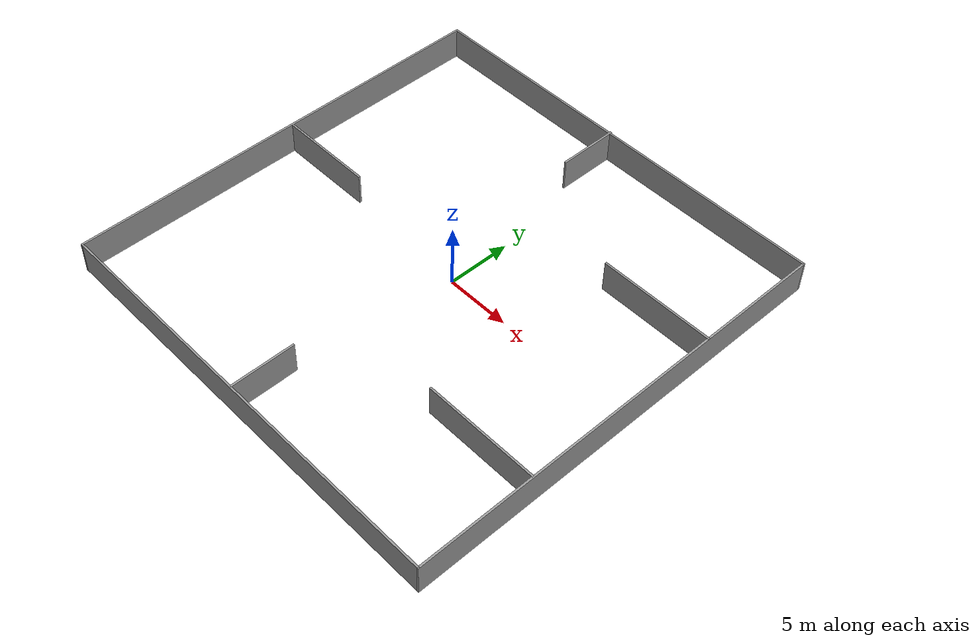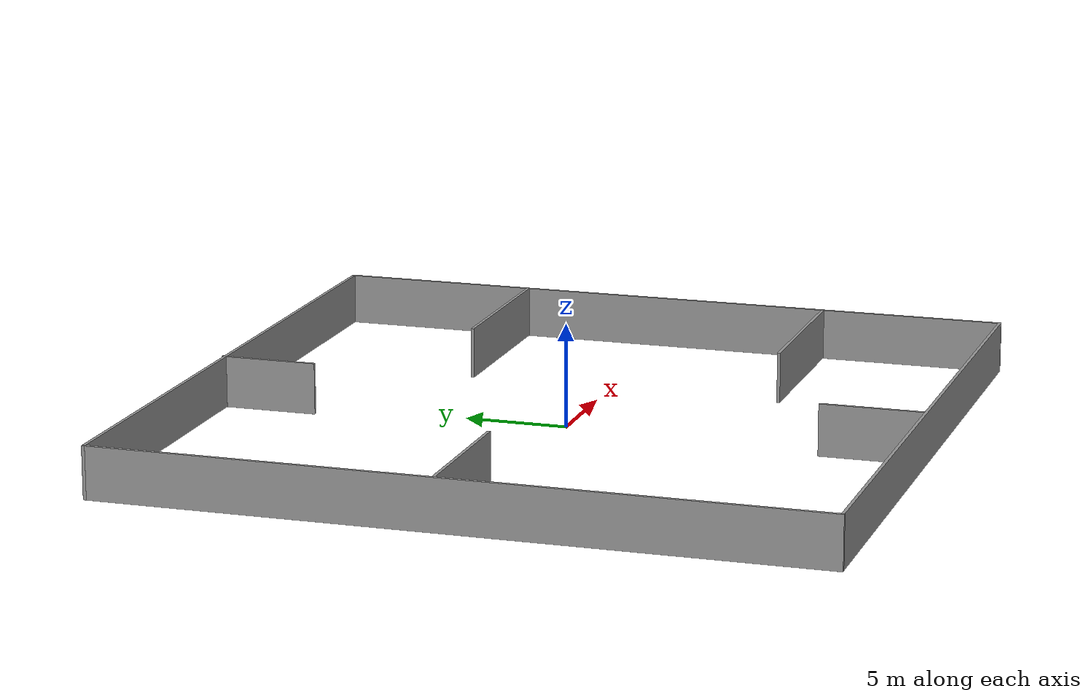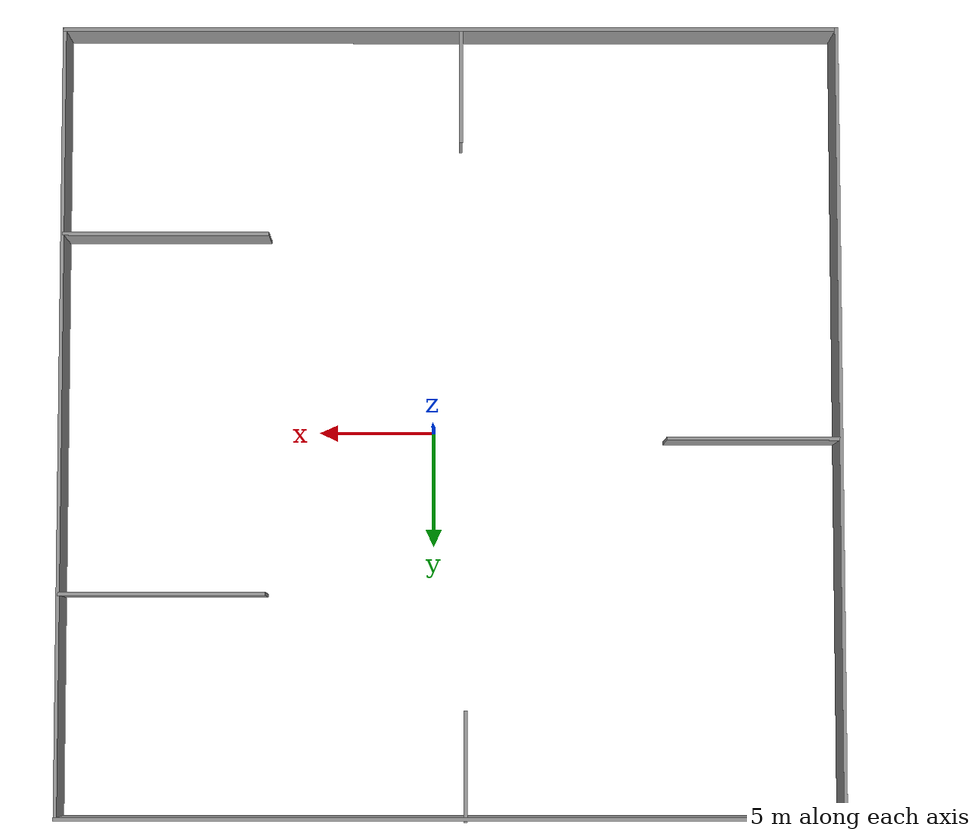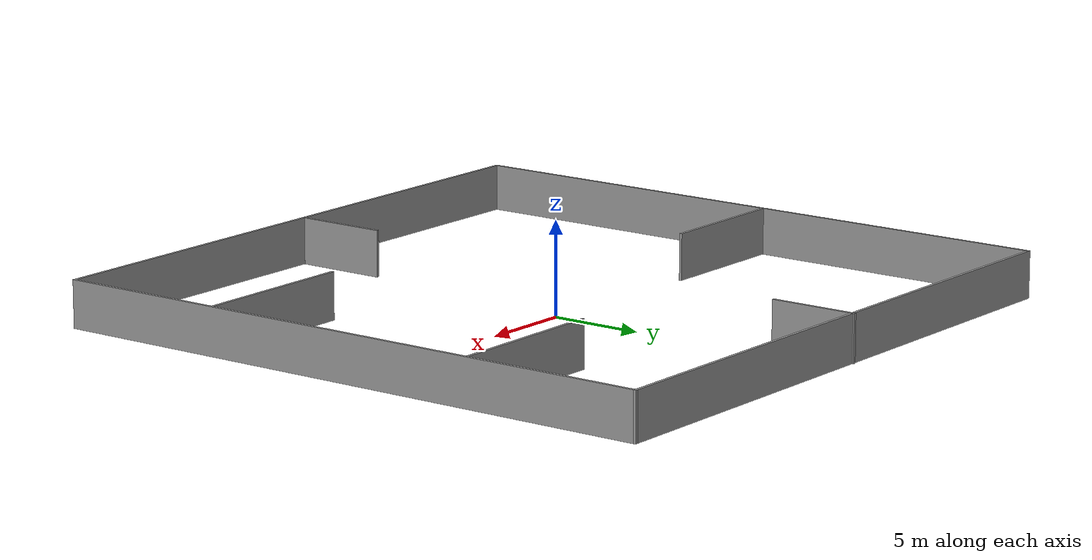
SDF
<?xml version='1.0'?>
<sdf version='1.7'>
  <model name='simple1.world'>
    <pose>-0.727323 -0.369878 0 0 -0 0</pose>
    <link name='Wall_15'>
      <collision name='Wall_15_Collision'>
        <geometry>
          <box>
            <size>9 0.15 2.5</size>
          </box>
        </geometry>
        <pose>0 0 1.25 0 -0 0</pose>
      </collision>
      <visual name='Wall_15_Visual'>
        <pose>0 0 1.25 0 -0 0</pose>
        <geometry>
          <box>
            <size>9 0.15 2.5</size>
          </box>
        </geometry>
        <material>
          <script>
            <uri>file://media/materials/scripts/gazebo.material</uri>
            <name>Gazebo/Grey</name>
          </script>
          <ambient>1 1 1 1</ambient>
        </material>
        <meta>
          <layer>0</layer>
        </meta>
      </visual>
      <pose>12.4867 7.51153 0 0 -0 3.14159</pose>
    </link>
    <link name='Wall_17'>
      <collision name='Wall_17_Collision'>
        <geometry>
          <box>
            <size>9 0.15 2.5</size>
          </box>
        </geometry>
        <pose>0 0 1.25 0 -0 0</pose>
      </collision>
      <visual name='Wall_17_Visual'>
        <pose>0 0 1.25 0 -0 0</pose>
        <geometry>
          <box>
            <size>9 0.15 2.5</size>
          </box>
        </geometry>
        <material>
          <script>
            <uri>file://media/materials/scripts/gazebo.material</uri>
            <name>Gazebo/Grey</name>
          </script>
          <ambient>1 1 1 1</ambient>
        </material>
        <meta>
          <layer>0</layer>
        </meta>
      </visual>
      <pose>12.4188 -8.15899 0 0 -0 3.14159</pose>
    </link>
    <link name='Wall_19'>
      <collision name='Wall_19_Collision'>
        <geometry>
          <box>
            <size>5 0.15 2.5</size>
          </box>
        </geometry>
        <pose>0 0 1.25 0 -0 0</pose>
      </collision>
      <visual name='Wall_19_Visual'>
        <pose>0 0 1.25 0 -0 0</pose>
        <geometry>
          <box>
            <size>5 0.15 2.5</size>
          </box>
        </geometry>
        <material>
          <script>
            <uri>file://media/materials/scripts/gazebo.material</uri>
            <name>Gazebo/Grey</name>
          </script>
          <ambient>1 1 1 1</ambient>
        </material>
        <meta>
          <layer>0</layer>
        </meta>
      </visual>
      <pose>-0.454808 -14.6886 0 0 -0 1.5708</pose>
    </link>
    <link name='Wall_21'>
      <collision name='Wall_21_Collision'>
        <geometry>
          <box>
            <size>4.75 0.15 2.5</size>
          </box>
        </geometry>
        <pose>0 0 1.25 0 -0 0</pose>
      </collision>
      <visual name='Wall_21_Visual'>
        <pose>0 0 1.25 0 -0 0</pose>
        <geometry>
          <box>
            <size>4.75 0.15 2.5</size>
          </box>
        </geometry>
        <material>
          <script>
            <uri>file://media/materials/scripts/gazebo.material</uri>
            <name>Gazebo/Grey</name>
          </script>
          <ambient>1 1 1 1</ambient>
        </material>
        <meta>
          <layer>0</layer>
        </meta>
      </visual>
      <pose>-0.658321 14.9123 0 0 -0 -1.5708</pose>
    </link>
    <link name='Wall_23'>
      <collision name='Wall_23_Collision'>
        <geometry>
          <box>
            <size>7.5 0.15 2.5</size>
          </box>
        </geometry>
        <pose>0 0 1.25 0 -0 0</pose>
      </collision>
      <visual name='Wall_23_Visual'>
        <pose>0 0 1.25 0 -0 0</pose>
        <geometry>
          <box>
            <size>7.5 0.15 2.5</size>
          </box>
        </geometry>
        <material>
          <script>
            <uri>file://media/materials/scripts/gazebo.material</uri>
            <name>Gazebo/Grey</name>
          </script>
          <ambient>1 1 1 1</ambient>
        </material>
        <meta>
          <layer>0</layer>
        </meta>
      </visual>
      <pose>-13.1287 0.795591 0 0 -0 0</pose>
    </link>
    <link name='Wall_3'>
      <collision name='Wall_3_Collision'>
        <geometry>
          <box>
            <size>34.5 0.15 2.5</size>
          </box>
        </geometry>
        <pose>0 0 1.25 0 -0 0</pose>
      </collision>
      <visual name='Wall_3_Visual'>
        <pose>0 0 1.25 0 -0 0</pose>
        <geometry>
          <box>
            <size>34.5 0.15 2.5</size>
          </box>
        </geometry>
        <material>
          <script>
            <uri>file://media/materials/scripts/gazebo.material</uri>
            <name>Gazebo/Grey</name>
          </script>
          <ambient>1 1 1 1</ambient>
        </material>
        <meta>
          <layer>0</layer>
        </meta>
      </visual>
      <pose>-16.925 -0.037325 0 0 -0 -1.5708</pose>
    </link>
    <link name='Wall_4'>
      <collision name='Wall_4_Collision'>
        <geometry>
          <box>
            <size>34 0.15 2.5</size>
          </box>
        </geometry>
        <pose>0 0 1.25 0 -0 0</pose>
      </collision>
      <visual name='Wall_4_Visual'>
        <pose>0 0 1.25 0 -0 0</pose>
        <geometry>
          <box>
            <size>34 0.15 2.5</size>
          </box>
        </geometry>
        <material>
          <script>
            <uri>file://media/materials/scripts/gazebo.material</uri>
            <name>Gazebo/Grey</name>
          </script>
          <ambient>1 1 1 1</ambient>
        </material>
        <meta>
          <layer>0</layer>
        </meta>
      </visual>
      <pose>0 -17.2123 0 0 -0 0</pose>
    </link>
    <link name='Wall_5'>
      <collision name='Wall_5_Collision'>
        <geometry>
          <box>
            <size>34.5 0.15 2.5</size>
          </box>
        </geometry>
        <pose>0 0 1.25 0 -0 0</pose>
      </collision>
      <visual name='Wall_5_Visual'>
        <pose>0 0 1.25 0 -0 0</pose>
        <geometry>
          <box>
            <size>34.5 0.15 2.5</size>
          </box>
        </geometry>
        <material>
          <script>
            <uri>file://media/materials/scripts/gazebo.material</uri>
            <name>Gazebo/Grey</name>
          </script>
          <ambient>1 1 1 1</ambient>
        </material>
        <meta>
          <layer>0</layer>
        </meta>
      </visual>
      <pose>16.925 -0.037325 0 0 -0 1.5708</pose>
    </link>
    <link name='Wall_6'>
      <collision name='Wall_6_Collision'>
        <geometry>
          <box>
            <size>34 0.15 2.5</size>
          </box>
        </geometry>
        <pose>0 0 1.25 0 -0 0</pose>
      </collision>
      <visual name='Wall_6_Visual'>
        <pose>0 0 1.25 0 -0 0</pose>
        <geometry>
          <box>
            <size>34 0.15 2.5</size>
          </box>
        </geometry>
        <material>
          <script>
            <uri>file://media/materials/scripts/gazebo.material</uri>
            <name>Gazebo/Grey</name>
          </script>
          <ambient>1 1 1 1</ambient>
        </material>
        <meta>
          <layer>0</layer>
        </meta>
      </visual>
      <pose>0 17.1377 0 0 -0 3.14159</pose>
    </link>
    <static>1</static>
  </model>
</sdf>
